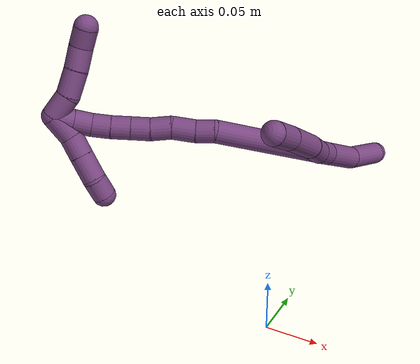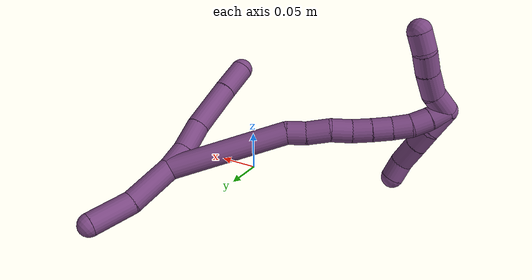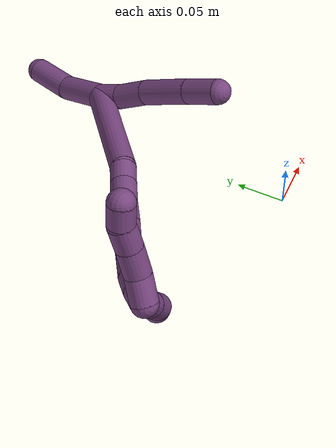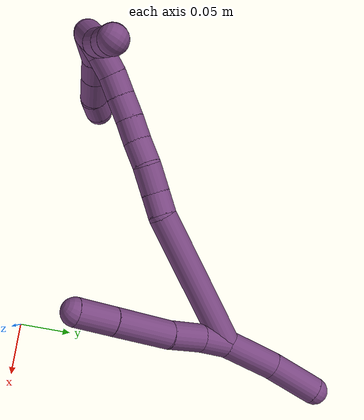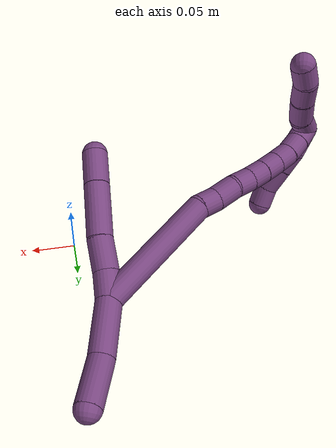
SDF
<sdf version="1.7">
 <world name="default">
  <model name="20">
   <static>0</static>
   <link name="20">
    <collision name="collision-cylinder-e_1_2_8">
     <pose>0.00357 -0.000194 0.012734 0.015232 0.273331 0.002095</pose>
     <geometry><cylinder><radius>0.0125</radius><length>0.026453</length></cylinder></geometry>
     <surface>
      <friction><ode><mu>1.16</mu><mu2>1.16</mu2><slip1>0</slip1><slip2>0</slip2></ode></friction>
      <contact><ode><kp>1e+06</kp><kd>1</kd><max_vel>0</max_vel><min_depth>0.001</min_depth></ode></contact>
     </surface>
    </collision>
    <visual name="visual-cylinder-e_1_2_8">
     <pose>0.00357 -0.000194 0.012734 0.015232 0.273331 0.002095</pose>
     <geometry><cylinder><radius>0.0125</radius><length>0.026453</length></cylinder></geometry>
     <material><ambient>0.478431 0.278431 0.509804 1</ambient></material>
    </visual>
    <collision name="collision-cylinder-e_2_8_9">
     <pose>0.012529 0.001577 0.041138 -0.124728 0.328785 -0.020717</pose>
     <geometry><cylinder><radius>0.0125</radius><length>0.033372</length></cylinder></geometry>
     <surface>
      <friction><ode><mu>1.16</mu><mu2>1.16</mu2><slip1>0</slip1><slip2>0</slip2></ode></friction>
      <contact><ode><kp>1e+06</kp><kd>1</kd><max_vel>0</max_vel><min_depth>0.001</min_depth></ode></contact>
     </surface>
    </collision>
    <visual name="visual-cylinder-e_2_8_9">
     <pose>0.012529 0.001577 0.041138 -0.124728 0.328785 -0.020717</pose>
     <geometry><cylinder><radius>0.0125</radius><length>0.033372</length></cylinder></geometry>
     <material><ambient>0.478431 0.278431 0.509804 1</ambient></material>
    </visual>
    <collision name="collision-cylinder-e_3_9_10">
     <pose>0.024131 0.004996 0.083506 -0.054447 0.228363 -0.006246</pose>
     <geometry><cylinder><radius>0.0125</radius><length>0.054901</length></cylinder></geometry>
     <surface>
      <friction><ode><mu>1.16</mu><mu2>1.16</mu2><slip1>0</slip1><slip2>0</slip2></ode></friction>
      <contact><ode><kp>1e+06</kp><kd>1</kd><max_vel>0</max_vel><min_depth>0.001</min_depth></ode></contact>
     </surface>
    </collision>
    <visual name="visual-cylinder-e_3_9_10">
     <pose>0.024131 0.004996 0.083506 -0.054447 0.228363 -0.006246</pose>
     <geometry><cylinder><radius>0.0125</radius><length>0.054901</length></cylinder></geometry>
     <material><ambient>0.478431 0.278431 0.509804 1</ambient></material>
    </visual>
    <collision name="collision-cylinder-e_4_10_6">
     <pose>0.034464 0.006709 0.127351 -0.015021 0.235716 -0.001779</pose>
     <geometry><cylinder><radius>0.0125</radius><length>0.035273</length></cylinder></geometry>
     <surface>
      <friction><ode><mu>1.16</mu><mu2>1.16</mu2><slip1>0</slip1><slip2>0</slip2></ode></friction>
      <contact><ode><kp>1e+06</kp><kd>1</kd><max_vel>0</max_vel><min_depth>0.001</min_depth></ode></contact>
     </surface>
    </collision>
    <visual name="visual-cylinder-e_4_10_6">
     <pose>0.034464 0.006709 0.127351 -0.015021 0.235716 -0.001779</pose>
     <geometry><cylinder><radius>0.0125</radius><length>0.035273</length></cylinder></geometry>
     <material><ambient>0.478431 0.278431 0.509804 1</ambient></material>
    </visual>
    <collision name="collision-cylinder-e_1_2_11">
     <pose>-0.001766 0.001723 -0.026414 -3.07645 -0.06662 1.59326</pose>
     <geometry><cylinder><radius>0.0125</radius><length>0.053059</length></cylinder></geometry>
     <surface>
      <friction><ode><mu>1.16</mu><mu2>1.16</mu2><slip1>0</slip1><slip2>0</slip2></ode></friction>
      <contact><ode><kp>1e+06</kp><kd>1</kd><max_vel>0</max_vel><min_depth>0.001</min_depth></ode></contact>
     </surface>
    </collision>
    <visual name="visual-cylinder-e_1_2_11">
     <pose>-0.001766 0.001723 -0.026414 -3.07645 -0.06662 1.59326</pose>
     <geometry><cylinder><radius>0.0125</radius><length>0.053059</length></cylinder></geometry>
     <material><ambient>0.478431 0.278431 0.509804 1</ambient></material>
    </visual>
    <collision name="collision-cylinder-e_2_11_5">
     <pose>-0.003671 0.010796 -0.075119 -2.8231 -0.005927 0.036901</pose>
     <geometry><cylinder><radius>0.0125</radius><length>0.046941</length></cylinder></geometry>
     <surface>
      <friction><ode><mu>1.16</mu><mu2>1.16</mu2><slip1>0</slip1><slip2>0</slip2></ode></friction>
      <contact><ode><kp>1e+06</kp><kd>1</kd><max_vel>0</max_vel><min_depth>0.001</min_depth></ode></contact>
     </surface>
    </collision>
    <visual name="visual-cylinder-e_2_11_5">
     <pose>-0.003671 0.010796 -0.075119 -2.8231 -0.005927 0.036901</pose>
     <geometry><cylinder><radius>0.0125</radius><length>0.046941</length></cylinder></geometry>
     <material><ambient>0.478431 0.278431 0.509804 1</ambient></material>
    </visual>
    <collision name="collision-cylinder-e_1_2_12">
     <pose>-0.033132 -0.011038 0.054504 0.199816 -0.537317 -0.055182</pose>
     <geometry><cylinder><radius>0.0125</radius><length>0.129465</length></cylinder></geometry>
     <surface>
      <friction><ode><mu>1.16</mu><mu2>1.16</mu2><slip1>0</slip1><slip2>0</slip2></ode></friction>
      <contact><ode><kp>1e+06</kp><kd>1</kd><max_vel>0</max_vel><min_depth>0.001</min_depth></ode></contact>
     </surface>
    </collision>
    <visual name="visual-cylinder-e_1_2_12">
     <pose>-0.033132 -0.011038 0.054504 0.199816 -0.537317 -0.055182</pose>
     <geometry><cylinder><radius>0.0125</radius><length>0.129465</length></cylinder></geometry>
     <material><ambient>0.478431 0.278431 0.509804 1</ambient></material>
    </visual>
    <collision name="collision-cylinder-e_2_12_13">
     <pose>-0.07306 -0.026027 0.11568 0.534698 -0.71969 -0.205376</pose>
     <geometry><cylinder><radius>0.0125</radius><length>0.020621</length></cylinder></geometry>
     <surface>
      <friction><ode><mu>1.16</mu><mu2>1.16</mu2><slip1>0</slip1><slip2>0</slip2></ode></friction>
      <contact><ode><kp>1e+06</kp><kd>1</kd><max_vel>0</max_vel><min_depth>0.001</min_depth></ode></contact>
     </surface>
    </collision>
    <visual name="visual-cylinder-e_2_12_13">
     <pose>-0.07306 -0.026027 0.11568 0.534698 -0.71969 -0.205376</pose>
     <geometry><cylinder><radius>0.0125</radius><length>0.020621</length></cylinder></geometry>
     <material><ambient>0.478431 0.278431 0.509804 1</ambient></material>
    </visual>
    <collision name="collision-cylinder-e_3_13_14">
     <pose>-0.088115 -0.032933 0.131541 0.311107 -0.707644 -0.115719</pose>
     <geometry><cylinder><radius>0.0125</radius><length>0.025409</length></cylinder></geometry>
     <surface>
      <friction><ode><mu>1.16</mu><mu2>1.16</mu2><slip1>0</slip1><slip2>0</slip2></ode></friction>
      <contact><ode><kp>1e+06</kp><kd>1</kd><max_vel>0</max_vel><min_depth>0.001</min_depth></ode></contact>
     </surface>
    </collision>
    <visual name="visual-cylinder-e_3_13_14">
     <pose>-0.088115 -0.032933 0.131541 0.311107 -0.707644 -0.115719</pose>
     <geometry><cylinder><radius>0.0125</radius><length>0.025409</length></cylinder></geometry>
     <material><ambient>0.478431 0.278431 0.509804 1</ambient></material>
    </visual>
    <collision name="collision-cylinder-e_4_14_15">
     <pose>-0.103055 -0.040999 0.148143 0.603697 -0.638525 -0.205133</pose>
     <geometry><cylinder><radius>0.0125</radius><length>0.022423</length></cylinder></geometry>
     <surface>
      <friction><ode><mu>1.16</mu><mu2>1.16</mu2><slip1>0</slip1><slip2>0</slip2></ode></friction>
      <contact><ode><kp>1e+06</kp><kd>1</kd><max_vel>0</max_vel><min_depth>0.001</min_depth></ode></contact>
     </surface>
    </collision>
    <visual name="visual-cylinder-e_4_14_15">
     <pose>-0.103055 -0.040999 0.148143 0.603697 -0.638525 -0.205133</pose>
     <geometry><cylinder><radius>0.0125</radius><length>0.022423</length></cylinder></geometry>
     <material><ambient>0.478431 0.278431 0.509804 1</ambient></material>
    </visual>
    <collision name="collision-cylinder-e_5_15_16">
     <pose>-0.116304 -0.049497 0.1628 0.437259 -0.687415 -0.158709</pose>
     <geometry><cylinder><radius>0.0125</radius><length>0.020697</length></cylinder></geometry>
     <surface>
      <friction><ode><mu>1.16</mu><mu2>1.16</mu2><slip1>0</slip1><slip2>0</slip2></ode></friction>
      <contact><ode><kp>1e+06</kp><kd>1</kd><max_vel>0</max_vel><min_depth>0.001</min_depth></ode></contact>
     </surface>
    </collision>
    <visual name="visual-cylinder-e_5_15_16">
     <pose>-0.116304 -0.049497 0.1628 0.437259 -0.687415 -0.158709</pose>
     <geometry><cylinder><radius>0.0125</radius><length>0.020697</length></cylinder></geometry>
     <material><ambient>0.478431 0.278431 0.509804 1</ambient></material>
    </visual>
    <collision name="collision-cylinder-e_6_16_17">
     <pose>-0.129135 -0.056317 0.177717 0.420796 -0.640516 -0.141428</pose>
     <geometry><cylinder><radius>0.0125</radius><length>0.020964</length></cylinder></geometry>
     <surface>
      <friction><ode><mu>1.16</mu><mu2>1.16</mu2><slip1>0</slip1><slip2>0</slip2></ode></friction>
      <contact><ode><kp>1e+06</kp><kd>1</kd><max_vel>0</max_vel><min_depth>0.001</min_depth></ode></contact>
     </surface>
    </collision>
    <visual name="visual-cylinder-e_6_16_17">
     <pose>-0.129135 -0.056317 0.177717 0.420796 -0.640516 -0.141428</pose>
     <geometry><cylinder><radius>0.0125</radius><length>0.020964</length></cylinder></geometry>
     <material><ambient>0.478431 0.278431 0.509804 1</ambient></material>
    </visual>
    <collision name="collision-cylinder-e_7_17_18">
     <pose>-0.141536 -0.062383 0.193009 0.332708 -0.650604 -0.113143</pose>
     <geometry><cylinder><radius>0.0125</radius><length>0.020264</length></cylinder></geometry>
     <surface>
      <friction><ode><mu>1.16</mu><mu2>1.16</mu2><slip1>0</slip1><slip2>0</slip2></ode></friction>
      <contact><ode><kp>1e+06</kp><kd>1</kd><max_vel>0</max_vel><min_depth>0.001</min_depth></ode></contact>
     </surface>
    </collision>
    <visual name="visual-cylinder-e_7_17_18">
     <pose>-0.141536 -0.062383 0.193009 0.332708 -0.650604 -0.113143</pose>
     <geometry><cylinder><radius>0.0125</radius><length>0.020264</length></cylinder></geometry>
     <material><ambient>0.478431 0.278431 0.509804 1</ambient></material>
    </visual>
    <collision name="collision-cylinder-e_8_18_19">
     <pose>-0.152392 -0.066469 0.209414 0.16384 -0.487385 -0.040822</pose>
     <geometry><cylinder><radius>0.0125</radius><length>0.020157</length></cylinder></geometry>
     <surface>
      <friction><ode><mu>1.16</mu><mu2>1.16</mu2><slip1>0</slip1><slip2>0</slip2></ode></friction>
      <contact><ode><kp>1e+06</kp><kd>1</kd><max_vel>0</max_vel><min_depth>0.001</min_depth></ode></contact>
     </surface>
    </collision>
    <visual name="visual-cylinder-e_8_18_19">
     <pose>-0.152392 -0.066469 0.209414 0.16384 -0.487385 -0.040822</pose>
     <geometry><cylinder><radius>0.0125</radius><length>0.020157</length></cylinder></geometry>
     <material><ambient>0.478431 0.278431 0.509804 1</ambient></material>
    </visual>
    <collision name="collision-cylinder-e_9_19_1">
     <pose>-0.161044 -0.068747 0.227358 0.089991 -0.404121 -0.018447</pose>
     <geometry><cylinder><radius>0.0125</radius><length>0.020001</length></cylinder></geometry>
     <surface>
      <friction><ode><mu>1.16</mu><mu2>1.16</mu2><slip1>0</slip1><slip2>0</slip2></ode></friction>
      <contact><ode><kp>1e+06</kp><kd>1</kd><max_vel>0</max_vel><min_depth>0.001</min_depth></ode></contact>
     </surface>
    </collision>
    <visual name="visual-cylinder-e_9_19_1">
     <pose>-0.161044 -0.068747 0.227358 0.089991 -0.404121 -0.018447</pose>
     <geometry><cylinder><radius>0.0125</radius><length>0.020001</length></cylinder></geometry>
     <material><ambient>0.478431 0.278431 0.509804 1</ambient></material>
    </visual>
    <collision name="collision-cylinder-e_1_1_20">
     <pose>-0.161902 -0.05691 0.234738 -1.71021 0.235995 -0.271018</pose>
     <geometry><cylinder><radius>0.0125</radius><length>0.026305</length></cylinder></geometry>
     <surface>
      <friction><ode><mu>1.16</mu><mu2>1.16</mu2><slip1>0</slip1><slip2>0</slip2></ode></friction>
      <contact><ode><kp>1e+06</kp><kd>1</kd><max_vel>0</max_vel><min_depth>0.001</min_depth></ode></contact>
     </surface>
    </collision>
    <visual name="visual-cylinder-e_1_1_20">
     <pose>-0.161902 -0.05691 0.234738 -1.71021 0.235995 -0.271018</pose>
     <geometry><cylinder><radius>0.0125</radius><length>0.026305</length></cylinder></geometry>
     <material><ambient>0.478431 0.278431 0.509804 1</ambient></material>
    </visual>
    <collision name="collision-cylinder-e_2_20_21">
     <pose>-0.158713 -0.030179 0.234099 -1.49007 0.008024 -0.007401</pose>
     <geometry><cylinder><radius>0.0125</radius><length>0.028226</length></cylinder></geometry>
     <surface>
      <friction><ode><mu>1.16</mu><mu2>1.16</mu2><slip1>0</slip1><slip2>0</slip2></ode></friction>
      <contact><ode><kp>1e+06</kp><kd>1</kd><max_vel>0</max_vel><min_depth>0.001</min_depth></ode></contact>
     </surface>
    </collision>
    <visual name="visual-cylinder-e_2_20_21">
     <pose>-0.158713 -0.030179 0.234099 -1.49007 0.008024 -0.007401</pose>
     <geometry><cylinder><radius>0.0125</radius><length>0.028226</length></cylinder></geometry>
     <material><ambient>0.478431 0.278431 0.509804 1</ambient></material>
    </visual>
    <collision name="collision-cylinder-e_3_21_22">
     <pose>-0.159337 -0.004109 0.236876 -1.4351 -0.060788 0.053056</pose>
     <geometry><cylinder><radius>0.0125</radius><length>0.024276</length></cylinder></geometry>
     <surface>
      <friction><ode><mu>1.16</mu><mu2>1.16</mu2><slip1>0</slip1><slip2>0</slip2></ode></friction>
      <contact><ode><kp>1e+06</kp><kd>1</kd><max_vel>0</max_vel><min_depth>0.001</min_depth></ode></contact>
     </surface>
    </collision>
    <visual name="visual-cylinder-e_3_21_22">
     <pose>-0.159337 -0.004109 0.236876 -1.4351 -0.060788 0.053056</pose>
     <geometry><cylinder><radius>0.0125</radius><length>0.024276</length></cylinder></geometry>
     <material><ambient>0.478431 0.278431 0.509804 1</ambient></material>
    </visual>
    <collision name="collision-cylinder-e_4_22_4">
     <pose>-0.157929 0.017893 0.241296 -1.29951 0.203904 -0.155157</pose>
     <geometry><cylinder><radius>0.0125</radius><length>0.021193</length></cylinder></geometry>
     <surface>
      <friction><ode><mu>1.16</mu><mu2>1.16</mu2><slip1>0</slip1><slip2>0</slip2></ode></friction>
      <contact><ode><kp>1e+06</kp><kd>1</kd><max_vel>0</max_vel><min_depth>0.001</min_depth></ode></contact>
     </surface>
    </collision>
    <visual name="visual-cylinder-e_4_22_4">
     <pose>-0.157929 0.017893 0.241296 -1.29951 0.203904 -0.155157</pose>
     <geometry><cylinder><radius>0.0125</radius><length>0.021193</length></cylinder></geometry>
     <material><ambient>0.478431 0.278431 0.509804 1</ambient></material>
    </visual>
    <collision name="collision-cylinder-e_1_1_23">
     <pose>-0.159331 -0.076508 0.225853 2.56493 0.417734 1.24096</pose>
     <geometry><cylinder><radius>0.0125</radius><length>0.027831</length></cylinder></geometry>
     <surface>
      <friction><ode><mu>1.16</mu><mu2>1.16</mu2><slip1>0</slip1><slip2>0</slip2></ode></friction>
      <contact><ode><kp>1e+06</kp><kd>1</kd><max_vel>0</max_vel><min_depth>0.001</min_depth></ode></contact>
     </surface>
    </collision>
    <visual name="visual-cylinder-e_1_1_23">
     <pose>-0.159331 -0.076508 0.225853 2.56493 0.417734 1.24096</pose>
     <geometry><cylinder><radius>0.0125</radius><length>0.027831</length></cylinder></geometry>
     <material><ambient>0.478431 0.278431 0.509804 1</ambient></material>
    </visual>
    <collision name="collision-cylinder-e_2_23_24">
     <pose>-0.147841 -0.091003 0.208907 2.26432 0.536433 1.05992</pose>
     <geometry><cylinder><radius>0.0125</radius><length>0.022875</length></cylinder></geometry>
     <surface>
      <friction><ode><mu>1.16</mu><mu2>1.16</mu2><slip1>0</slip1><slip2>0</slip2></ode></friction>
      <contact><ode><kp>1e+06</kp><kd>1</kd><max_vel>0</max_vel><min_depth>0.001</min_depth></ode></contact>
     </surface>
    </collision>
    <visual name="visual-cylinder-e_2_23_24">
     <pose>-0.147841 -0.091003 0.208907 2.26432 0.536433 1.05992</pose>
     <geometry><cylinder><radius>0.0125</radius><length>0.022875</length></cylinder></geometry>
     <material><ambient>0.478431 0.278431 0.509804 1</ambient></material>
    </visual>
    <collision name="collision-cylinder-e_3_24_25">
     <pose>-0.134646 -0.107724 0.194815 2.27657 0.548134 1.09398</pose>
     <geometry><cylinder><radius>0.0125</radius><length>0.028206</length></cylinder></geometry>
     <surface>
      <friction><ode><mu>1.16</mu><mu2>1.16</mu2><slip1>0</slip1><slip2>0</slip2></ode></friction>
      <contact><ode><kp>1e+06</kp><kd>1</kd><max_vel>0</max_vel><min_depth>0.001</min_depth></ode></contact>
     </surface>
    </collision>
    <visual name="visual-cylinder-e_3_24_25">
     <pose>-0.134646 -0.107724 0.194815 2.27657 0.548134 1.09398</pose>
     <geometry><cylinder><radius>0.0125</radius><length>0.028206</length></cylinder></geometry>
     <material><ambient>0.478431 0.278431 0.509804 1</ambient></material>
    </visual>
    <collision name="collision-cylinder-e_4_25_3">
     <pose>-0.124224 -0.123498 0.179391 2.42663 0.295751 0.758933</pose>
     <geometry><cylinder><radius>0.0125</radius><length>0.021089</length></cylinder></geometry>
     <surface>
      <friction><ode><mu>1.16</mu><mu2>1.16</mu2><slip1>0</slip1><slip2>0</slip2></ode></friction>
      <contact><ode><kp>1e+06</kp><kd>1</kd><max_vel>0</max_vel><min_depth>0.001</min_depth></ode></contact>
     </surface>
    </collision>
    <visual name="visual-cylinder-e_4_25_3">
     <pose>-0.124224 -0.123498 0.179391 2.42663 0.295751 0.758933</pose>
     <geometry><cylinder><radius>0.0125</radius><length>0.021089</length></cylinder></geometry>
     <material><ambient>0.478431 0.278431 0.509804 1</ambient></material>
    </visual>
    <collision name="collision-sphere-3">
     <pose>-0.121151 -0.130111 0.171775 0 -0 0</pose>
     <geometry><sphere><radius>0.0125</radius></sphere></geometry>
     <surface>
      <friction><ode><mu>1.16</mu><mu2>1.16</mu2><slip1>0</slip1><slip2>0</slip2></ode></friction>
      <contact><ode><kp>1e+06</kp><kd>1</kd><max_vel>0</max_vel><min_depth>0.001</min_depth></ode></contact>
     </surface>
    </collision>
    <visual name="visual-sphere-3">
     <pose>-0.121151 -0.130111 0.171775 0 -0 0</pose>
     <geometry><sphere><radius>0.0125</radius></sphere></geometry>
     <material><ambient>0.478431 0.278431 0.509804 1</ambient></material>
    </visual>
    <collision name="collision-sphere-25">
     <pose>-0.127297 -0.116886 0.187008 0 -0 0</pose>
     <geometry><sphere><radius>0.0125</radius></sphere></geometry>
     <surface>
      <friction><ode><mu>1.16</mu><mu2>1.16</mu2><slip1>0</slip1><slip2>0</slip2></ode></friction>
      <contact><ode><kp>1e+06</kp><kd>1</kd><max_vel>0</max_vel><min_depth>0.001</min_depth></ode></contact>
     </surface>
    </collision>
    <visual name="visual-sphere-25">
     <pose>-0.127297 -0.116886 0.187008 0 -0 0</pose>
     <geometry><sphere><radius>0.0125</radius></sphere></geometry>
     <material><ambient>0.478431 0.278431 0.509804 1</ambient></material>
    </visual>
    <collision name="collision-sphere-24">
     <pose>-0.141996 -0.098563 0.202623 0 -0 0</pose>
     <geometry><sphere><radius>0.0125</radius></sphere></geometry>
     <surface>
      <friction><ode><mu>1.16</mu><mu2>1.16</mu2><slip1>0</slip1><slip2>0</slip2></ode></friction>
      <contact><ode><kp>1e+06</kp><kd>1</kd><max_vel>0</max_vel><min_depth>0.001</min_depth></ode></contact>
     </surface>
    </collision>
    <visual name="visual-sphere-24">
     <pose>-0.141996 -0.098563 0.202623 0 -0 0</pose>
     <geometry><sphere><radius>0.0125</radius></sphere></geometry>
     <material><ambient>0.478431 0.278431 0.509804 1</ambient></material>
    </visual>
    <collision name="collision-sphere-23">
     <pose>-0.153686 -0.083443 0.215191 0 -0 0</pose>
     <geometry><sphere><radius>0.0125</radius></sphere></geometry>
     <surface>
      <friction><ode><mu>1.16</mu><mu2>1.16</mu2><slip1>0</slip1><slip2>0</slip2></ode></friction>
      <contact><ode><kp>1e+06</kp><kd>1</kd><max_vel>0</max_vel><min_depth>0.001</min_depth></ode></contact>
     </surface>
    </collision>
    <visual name="visual-sphere-23">
     <pose>-0.153686 -0.083443 0.215191 0 -0 0</pose>
     <geometry><sphere><radius>0.0125</radius></sphere></geometry>
     <material><ambient>0.478431 0.278431 0.509804 1</ambient></material>
    </visual>
    <collision name="collision-sphere-4">
     <pose>-0.155783 0.02789 0.244077 0 -0 0</pose>
     <geometry><sphere><radius>0.0125</radius></sphere></geometry>
     <surface>
      <friction><ode><mu>1.16</mu><mu2>1.16</mu2><slip1>0</slip1><slip2>0</slip2></ode></friction>
      <contact><ode><kp>1e+06</kp><kd>1</kd><max_vel>0</max_vel><min_depth>0.001</min_depth></ode></contact>
     </surface>
    </collision>
    <visual name="visual-sphere-4">
     <pose>-0.155783 0.02789 0.244077 0 -0 0</pose>
     <geometry><sphere><radius>0.0125</radius></sphere></geometry>
     <material><ambient>0.478431 0.278431 0.509804 1</ambient></material>
    </visual>
    <collision name="collision-sphere-22">
     <pose>-0.160075 0.007895 0.238515 0 -0 0</pose>
     <geometry><sphere><radius>0.0125</radius></sphere></geometry>
     <surface>
      <friction><ode><mu>1.16</mu><mu2>1.16</mu2><slip1>0</slip1><slip2>0</slip2></ode></friction>
      <contact><ode><kp>1e+06</kp><kd>1</kd><max_vel>0</max_vel><min_depth>0.001</min_depth></ode></contact>
     </surface>
    </collision>
    <visual name="visual-sphere-22">
     <pose>-0.160075 0.007895 0.238515 0 -0 0</pose>
     <geometry><sphere><radius>0.0125</radius></sphere></geometry>
     <material><ambient>0.478431 0.278431 0.509804 1</ambient></material>
    </visual>
    <collision name="collision-sphere-21">
     <pose>-0.1586 -0.016113 0.235237 0 -0 0</pose>
     <geometry><sphere><radius>0.0125</radius></sphere></geometry>
     <surface>
      <friction><ode><mu>1.16</mu><mu2>1.16</mu2><slip1>0</slip1><slip2>0</slip2></ode></friction>
      <contact><ode><kp>1e+06</kp><kd>1</kd><max_vel>0</max_vel><min_depth>0.001</min_depth></ode></contact>
     </surface>
    </collision>
    <visual name="visual-sphere-21">
     <pose>-0.1586 -0.016113 0.235237 0 -0 0</pose>
     <geometry><sphere><radius>0.0125</radius></sphere></geometry>
     <material><ambient>0.478431 0.278431 0.509804 1</ambient></material>
    </visual>
    <collision name="collision-sphere-20">
     <pose>-0.158826 -0.044246 0.232961 0 -0 0</pose>
     <geometry><sphere><radius>0.0125</radius></sphere></geometry>
     <surface>
      <friction><ode><mu>1.16</mu><mu2>1.16</mu2><slip1>0</slip1><slip2>0</slip2></ode></friction>
      <contact><ode><kp>1e+06</kp><kd>1</kd><max_vel>0</max_vel><min_depth>0.001</min_depth></ode></contact>
     </surface>
    </collision>
    <visual name="visual-sphere-20">
     <pose>-0.158826 -0.044246 0.232961 0 -0 0</pose>
     <geometry><sphere><radius>0.0125</radius></sphere></geometry>
     <material><ambient>0.478431 0.278431 0.509804 1</ambient></material>
    </visual>
    <collision name="collision-sphere-11">
     <pose>-0.003532 0.003446 -0.052829 0 -0 0</pose>
     <geometry><sphere><radius>0.0125</radius></sphere></geometry>
     <surface>
      <friction><ode><mu>1.16</mu><mu2>1.16</mu2><slip1>0</slip1><slip2>0</slip2></ode></friction>
      <contact><ode><kp>1e+06</kp><kd>1</kd><max_vel>0</max_vel><min_depth>0.001</min_depth></ode></contact>
     </surface>
    </collision>
    <visual name="visual-sphere-11">
     <pose>-0.003532 0.003446 -0.052829 0 -0 0</pose>
     <geometry><sphere><radius>0.0125</radius></sphere></geometry>
     <material><ambient>0.478431 0.278431 0.509804 1</ambient></material>
    </visual>
    <collision name="collision-sphere-6">
     <pose>0.038583 0.006967 0.144498 0 -0 0</pose>
     <geometry><sphere><radius>0.0125</radius></sphere></geometry>
     <surface>
      <friction><ode><mu>1.16</mu><mu2>1.16</mu2><slip1>0</slip1><slip2>0</slip2></ode></friction>
      <contact><ode><kp>1e+06</kp><kd>1</kd><max_vel>0</max_vel><min_depth>0.001</min_depth></ode></contact>
     </surface>
    </collision>
    <visual name="visual-sphere-6">
     <pose>0.038583 0.006967 0.144498 0 -0 0</pose>
     <geometry><sphere><radius>0.0125</radius></sphere></geometry>
     <material><ambient>0.478431 0.278431 0.509804 1</ambient></material>
    </visual>
    <collision name="collision-sphere-10">
     <pose>0.030345 0.006452 0.110204 0 -0 0</pose>
     <geometry><sphere><radius>0.0125</radius></sphere></geometry>
     <surface>
      <friction><ode><mu>1.16</mu><mu2>1.16</mu2><slip1>0</slip1><slip2>0</slip2></ode></friction>
      <contact><ode><kp>1e+06</kp><kd>1</kd><max_vel>0</max_vel><min_depth>0.001</min_depth></ode></contact>
     </surface>
    </collision>
    <visual name="visual-sphere-10">
     <pose>0.030345 0.006452 0.110204 0 -0 0</pose>
     <geometry><sphere><radius>0.0125</radius></sphere></geometry>
     <material><ambient>0.478431 0.278431 0.509804 1</ambient></material>
    </visual>
    <collision name="collision-sphere-9">
     <pose>0.017916 0.003541 0.056808 0 -0 0</pose>
     <geometry><sphere><radius>0.0125</radius></sphere></geometry>
     <surface>
      <friction><ode><mu>1.16</mu><mu2>1.16</mu2><slip1>0</slip1><slip2>0</slip2></ode></friction>
      <contact><ode><kp>1e+06</kp><kd>1</kd><max_vel>0</max_vel><min_depth>0.001</min_depth></ode></contact>
     </surface>
    </collision>
    <visual name="visual-sphere-9">
     <pose>0.017916 0.003541 0.056808 0 -0 0</pose>
     <geometry><sphere><radius>0.0125</radius></sphere></geometry>
     <material><ambient>0.478431 0.278431 0.509804 1</ambient></material>
    </visual>
    <collision name="collision-sphere-2">
     <geometry><sphere><radius>0.0125</radius></sphere></geometry>
     <surface>
      <friction><ode><mu>1.16</mu><mu2>1.16</mu2><slip1>0</slip1><slip2>0</slip2></ode></friction>
      <contact><ode><kp>1e+06</kp><kd>1</kd><max_vel>0</max_vel><min_depth>0.001</min_depth></ode></contact>
     </surface>
    </collision>
    <visual name="visual-sphere-2">
     <geometry><sphere><radius>0.0125</radius></sphere></geometry>
     <material><ambient>0.478431 0.278431 0.509804 1</ambient></material>
    </visual>
    <collision name="collision-sphere-19">
     <pose>-0.157112 -0.067921 0.2182 0 -0 0</pose>
     <geometry><sphere><radius>0.0125</radius></sphere></geometry>
     <surface>
      <friction><ode><mu>1.16</mu><mu2>1.16</mu2><slip1>0</slip1><slip2>0</slip2></ode></friction>
      <contact><ode><kp>1e+06</kp><kd>1</kd><max_vel>0</max_vel><min_depth>0.001</min_depth></ode></contact>
     </surface>
    </collision>
    <visual name="visual-sphere-19">
     <pose>-0.157112 -0.067921 0.2182 0 -0 0</pose>
     <geometry><sphere><radius>0.0125</radius></sphere></geometry>
     <material><ambient>0.478431 0.278431 0.509804 1</ambient></material>
    </visual>
    <collision name="collision-sphere-8">
     <pose>0.007141 -0.000388 0.025468 0 -0 0</pose>
     <geometry><sphere><radius>0.0125</radius></sphere></geometry>
     <surface>
      <friction><ode><mu>1.16</mu><mu2>1.16</mu2><slip1>0</slip1><slip2>0</slip2></ode></friction>
      <contact><ode><kp>1e+06</kp><kd>1</kd><max_vel>0</max_vel><min_depth>0.001</min_depth></ode></contact>
     </surface>
    </collision>
    <visual name="visual-sphere-8">
     <pose>0.007141 -0.000388 0.025468 0 -0 0</pose>
     <geometry><sphere><radius>0.0125</radius></sphere></geometry>
     <material><ambient>0.478431 0.278431 0.509804 1</ambient></material>
    </visual>
    <collision name="collision-sphere-5">
     <pose>-0.00381 0.018145 -0.097408 0 -0 0</pose>
     <geometry><sphere><radius>0.0125</radius></sphere></geometry>
     <surface>
      <friction><ode><mu>1.16</mu><mu2>1.16</mu2><slip1>0</slip1><slip2>0</slip2></ode></friction>
      <contact><ode><kp>1e+06</kp><kd>1</kd><max_vel>0</max_vel><min_depth>0.001</min_depth></ode></contact>
     </surface>
    </collision>
    <visual name="visual-sphere-5">
     <pose>-0.00381 0.018145 -0.097408 0 -0 0</pose>
     <geometry><sphere><radius>0.0125</radius></sphere></geometry>
     <material><ambient>0.478431 0.278431 0.509804 1</ambient></material>
    </visual>
    <collision name="collision-sphere-12">
     <pose>-0.066264 -0.022076 0.109008 0 -0 0</pose>
     <geometry><sphere><radius>0.0125</radius></sphere></geometry>
     <surface>
      <friction><ode><mu>1.16</mu><mu2>1.16</mu2><slip1>0</slip1><slip2>0</slip2></ode></friction>
      <contact><ode><kp>1e+06</kp><kd>1</kd><max_vel>0</max_vel><min_depth>0.001</min_depth></ode></contact>
     </surface>
    </collision>
    <visual name="visual-sphere-12">
     <pose>-0.066264 -0.022076 0.109008 0 -0 0</pose>
     <geometry><sphere><radius>0.0125</radius></sphere></geometry>
     <material><ambient>0.478431 0.278431 0.509804 1</ambient></material>
    </visual>
    <collision name="collision-sphere-13">
     <pose>-0.079856 -0.029978 0.122351 0 -0 0</pose>
     <geometry><sphere><radius>0.0125</radius></sphere></geometry>
     <surface>
      <friction><ode><mu>1.16</mu><mu2>1.16</mu2><slip1>0</slip1><slip2>0</slip2></ode></friction>
      <contact><ode><kp>1e+06</kp><kd>1</kd><max_vel>0</max_vel><min_depth>0.001</min_depth></ode></contact>
     </surface>
    </collision>
    <visual name="visual-sphere-13">
     <pose>-0.079856 -0.029978 0.122351 0 -0 0</pose>
     <geometry><sphere><radius>0.0125</radius></sphere></geometry>
     <material><ambient>0.478431 0.278431 0.509804 1</ambient></material>
    </visual>
    <collision name="collision-sphere-14">
     <pose>-0.096373 -0.035889 0.140732 0 -0 0</pose>
     <geometry><sphere><radius>0.0125</radius></sphere></geometry>
     <surface>
      <friction><ode><mu>1.16</mu><mu2>1.16</mu2><slip1>0</slip1><slip2>0</slip2></ode></friction>
      <contact><ode><kp>1e+06</kp><kd>1</kd><max_vel>0</max_vel><min_depth>0.001</min_depth></ode></contact>
     </surface>
    </collision>
    <visual name="visual-sphere-14">
     <pose>-0.096373 -0.035889 0.140732 0 -0 0</pose>
     <geometry><sphere><radius>0.0125</radius></sphere></geometry>
     <material><ambient>0.478431 0.278431 0.509804 1</ambient></material>
    </visual>
    <collision name="collision-sphere-15">
     <pose>-0.109737 -0.04611 0.155554 0 -0 0</pose>
     <geometry><sphere><radius>0.0125</radius></sphere></geometry>
     <surface>
      <friction><ode><mu>1.16</mu><mu2>1.16</mu2><slip1>0</slip1><slip2>0</slip2></ode></friction>
      <contact><ode><kp>1e+06</kp><kd>1</kd><max_vel>0</max_vel><min_depth>0.001</min_depth></ode></contact>
     </surface>
    </collision>
    <visual name="visual-sphere-15">
     <pose>-0.109737 -0.04611 0.155554 0 -0 0</pose>
     <geometry><sphere><radius>0.0125</radius></sphere></geometry>
     <material><ambient>0.478431 0.278431 0.509804 1</ambient></material>
    </visual>
    <collision name="collision-sphere-16">
     <pose>-0.122871 -0.052884 0.170046 0 -0 0</pose>
     <geometry><sphere><radius>0.0125</radius></sphere></geometry>
     <surface>
      <friction><ode><mu>1.16</mu><mu2>1.16</mu2><slip1>0</slip1><slip2>0</slip2></ode></friction>
      <contact><ode><kp>1e+06</kp><kd>1</kd><max_vel>0</max_vel><min_depth>0.001</min_depth></ode></contact>
     </surface>
    </collision>
    <visual name="visual-sphere-16">
     <pose>-0.122871 -0.052884 0.170046 0 -0 0</pose>
     <geometry><sphere><radius>0.0125</radius></sphere></geometry>
     <material><ambient>0.478431 0.278431 0.509804 1</ambient></material>
    </visual>
    <collision name="collision-sphere-17">
     <pose>-0.135399 -0.05975 0.185389 0 -0 0</pose>
     <geometry><sphere><radius>0.0125</radius></sphere></geometry>
     <surface>
      <friction><ode><mu>1.16</mu><mu2>1.16</mu2><slip1>0</slip1><slip2>0</slip2></ode></friction>
      <contact><ode><kp>1e+06</kp><kd>1</kd><max_vel>0</max_vel><min_depth>0.001</min_depth></ode></contact>
     </surface>
    </collision>
    <visual name="visual-sphere-17">
     <pose>-0.135399 -0.05975 0.185389 0 -0 0</pose>
     <geometry><sphere><radius>0.0125</radius></sphere></geometry>
     <material><ambient>0.478431 0.278431 0.509804 1</ambient></material>
    </visual>
    <collision name="collision-sphere-18">
     <pose>-0.147672 -0.065016 0.200629 0 -0 0</pose>
     <geometry><sphere><radius>0.0125</radius></sphere></geometry>
     <surface>
      <friction><ode><mu>1.16</mu><mu2>1.16</mu2><slip1>0</slip1><slip2>0</slip2></ode></friction>
      <contact><ode><kp>1e+06</kp><kd>1</kd><max_vel>0</max_vel><min_depth>0.001</min_depth></ode></contact>
     </surface>
    </collision>
    <visual name="visual-sphere-18">
     <pose>-0.147672 -0.065016 0.200629 0 -0 0</pose>
     <geometry><sphere><radius>0.0125</radius></sphere></geometry>
     <material><ambient>0.478431 0.278431 0.509804 1</ambient></material>
    </visual>
    <collision name="collision-sphere-1">
     <pose>-0.164977 -0.069574 0.236515 0 -0 0</pose>
     <geometry><sphere><radius>0.0125</radius></sphere></geometry>
     <surface>
      <friction><ode><mu>1.16</mu><mu2>1.16</mu2><slip1>0</slip1><slip2>0</slip2></ode></friction>
      <contact><ode><kp>1e+06</kp><kd>1</kd><max_vel>0</max_vel><min_depth>0.001</min_depth></ode></contact>
     </surface>
    </collision>
    <visual name="visual-sphere-1">
     <pose>-0.164977 -0.069574 0.236515 0 -0 0</pose>
     <geometry><sphere><radius>0.0125</radius></sphere></geometry>
     <material><ambient>0.478431 0.278431 0.509804 1</ambient></material>
    </visual>
    <inertial>
     <pose>-0.069362 -0.027563 0.114305 0 -0 0</pose>
     <mass>0.75</mass>
     <inertia>
      <ixx>0.000225</ixx>
      <ixy>0</ixy>
      <ixz>0</ixz>
      <iyy>0.000224</iyy>
      <iyz>0</iyz>
      <izz>0.000136</izz>
     </inertia>
    </inertial>
   </link>
   <pose>-0.021628 0.198029 0.092804 1.07683 0.043977 -0.376908</pose>
  </model>
 </world>
</sdf>
